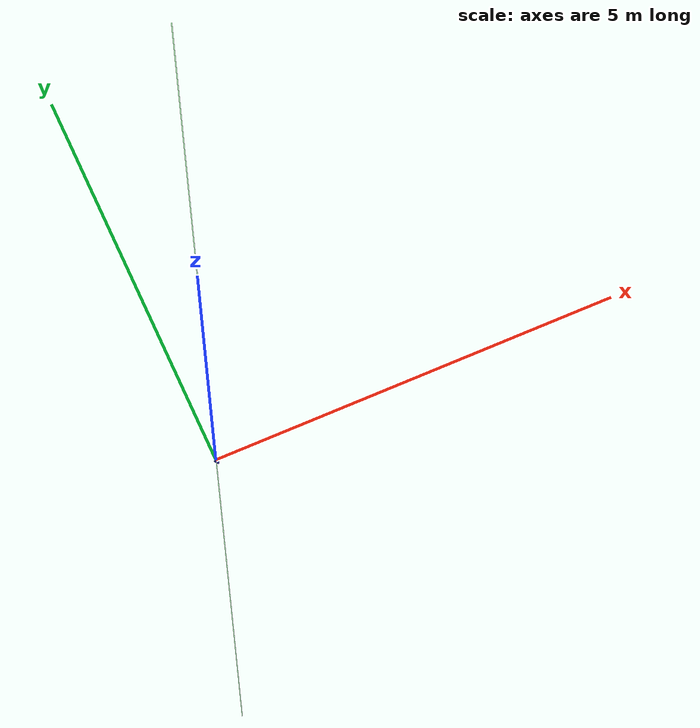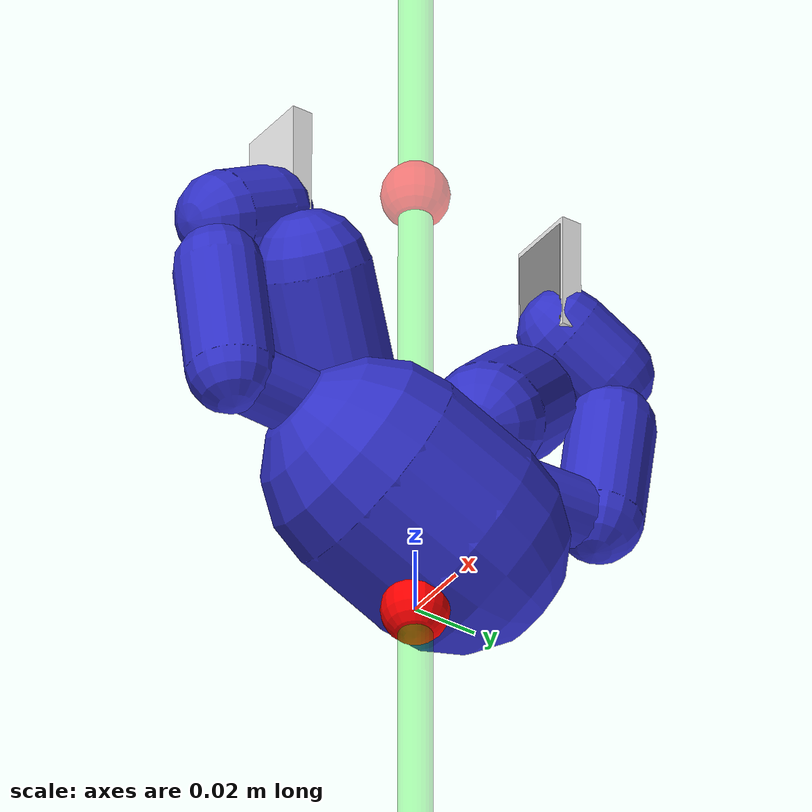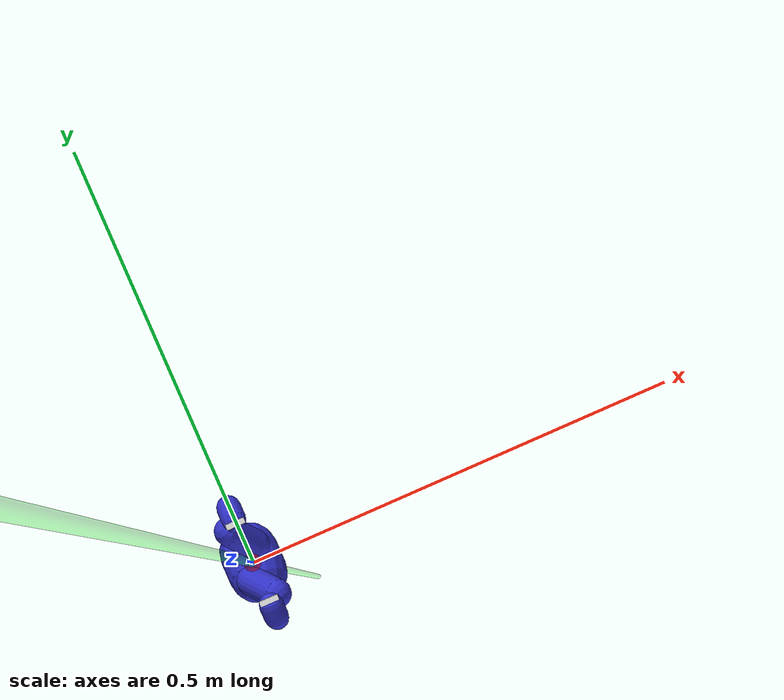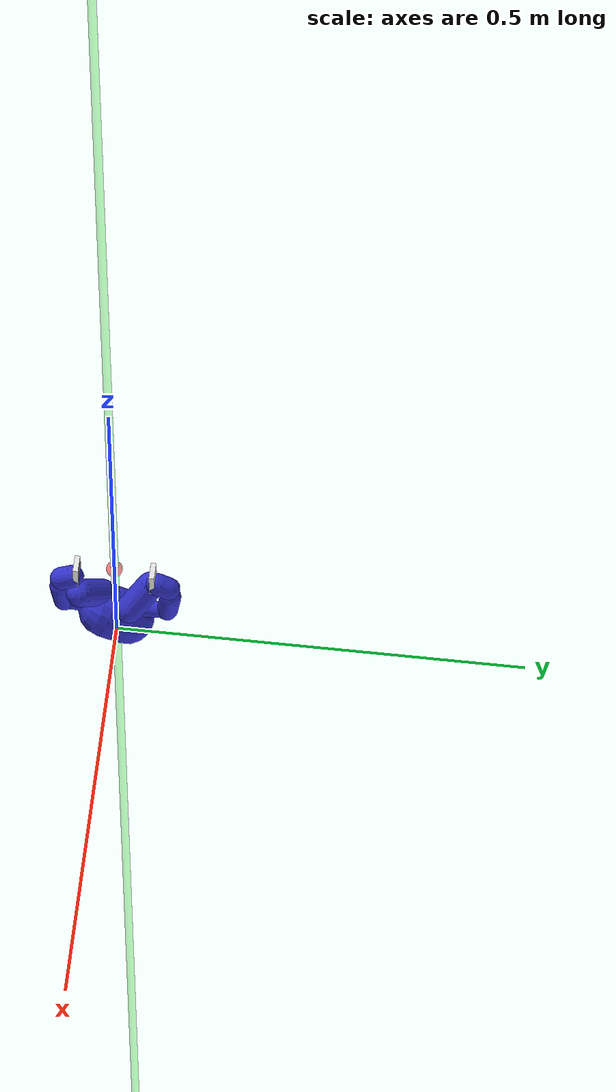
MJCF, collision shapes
<mujoco model="robotiq_gripper_85_model">
  <asset>
    <mesh name="robotiq_arg2f_base_link" file="meshes/robotiq_85_gripper/robotiq_arg2f_base_link.stl"/>
    <mesh name="robotiq_arg2f_85_outer_knuckle" file="meshes/robotiq_85_gripper/robotiq_arg2f_85_outer_knuckle.stl" scale="0.001 0.001 0.001"/>
    <mesh name="robotiq_arg2f_85_outer_finger" file="meshes/robotiq_85_gripper/robotiq_arg2f_85_outer_finger.stl" scale="0.001 0.001 0.001"/>
    <mesh name="robotiq_arg2f_85_inner_finger" file="meshes/robotiq_85_gripper/robotiq_arg2f_85_inner_finger.stl" scale="0.001 0.001 0.001"/>
    <mesh name="robotiq_arg2f_85_inner_knuckle" file="meshes/robotiq_85_gripper/robotiq_arg2f_85_inner_knuckle.stl" scale="0.001 0.001 0.001"/>
    <mesh name="robotiq_arg2f_base_link" file="meshes/robotiq_85_gripper/robotiq_arg2f_base_link_vis.stl"/>
    <mesh name="robotiq_arg2f_85_outer_knuckle_vis" file="meshes/robotiq_85_gripper/robotiq_arg2f_85_outer_knuckle_vis.stl" scale="0.001 0.001 0.001"/>
    <mesh name="robotiq_arg2f_85_outer_finger_vis" file="meshes/robotiq_85_gripper/robotiq_arg2f_85_outer_finger_vis.stl" scale="0.001 0.001 0.001"/>
    <mesh name="robotiq_arg2f_85_inner_finger_vis" file="meshes/robotiq_85_gripper/robotiq_arg2f_85_inner_finger_vis.stl" scale="0.001 0.001 0.001"/>
    <mesh name="robotiq_arg2f_85_inner_knuckle_vis" file="meshes/robotiq_85_gripper/robotiq_arg2f_85_inner_knuckle_vis.stl" scale="0.001 0.001 0.001"/>
  </asset>
  <tendon>
    <fixed name="finger2_12_cpl" range="-1 1" stiffness="0.4" springlength="0.001" limited="true">
      <joint joint="finger_joint" coef="1"/>
      <joint joint="left_inner_finger_joint" coef="-3"/>
      <joint joint="left_inner_knuckle_joint" coef="1"/>
    </fixed>
    <fixed name="finger1_12_cpl" range="-1 1" stiffness="0.4" springlength="0.001" limited="true">
      <joint joint="right_outer_knuckle_joint" coef="1"/>
      <joint joint="right_inner_finger_joint" coef="-3"/>
      <joint joint="right_inner_knuckle_joint" coef="1"/>
    </fixed>
  </tendon>
  <actuator>
    <position name="finger_1" ctrllimited="true" kp="20" joint="finger_joint" ctrlrange="0 0.8"/>
    <position name="finger_2" ctrllimited="true" kp="20" joint="right_outer_knuckle_joint" ctrlrange="0 0.8"/>
  </actuator>
  <worldbody>
    <body name="robotiq_85_adapter_link" pos="0.0 0 0">
      <site name="ft_frame" pos="0 0 0" size="0.01 0.01 0.01" rgba="1 0 0 1" type="sphere" group="1"/>
      <body name="eef" pos="0 0 0.145" quat="0.707105 0 0 -0.707105">
        <site name="grip_site" pos="0 0 0" size="0.01 0.01 0.01" rgba="1 0 0 0.5" type="sphere" group="1"/>
        <site name="ee_x" pos="0.1 0 0" size="0.005 .1" quat="0.707105  0 0.707108 0 " rgba="1 0 0 0" type="cylinder" group="1"/>
        <site name="ee_y" pos="0 0.1 0" size="0.005 .1" quat="0.707105 0.707108 0 0" rgba="0 1 0 0" type="cylinder" group="1"/>
        <site name="ee_z" pos="0 0 0.1" size="0.005 .1" quat="1 0 0 0" rgba="0 0 1 0" type="cylinder" group="1"/>
        <site name="grip_site_cylinder" pos="0 0 0" size="0.005 10" rgba="0 1 0 0.3" type="cylinder" group="1"/>
      </body>
      <inertial pos="0 0 0" mass="0.01" diaginertia="0.001 0.001 0.001"/>
      <geom type="capsule" contype="0" conaffinity="0" group="1" rgba="0.2 0.2 0.8 0.5" name="hand_visual" pos="-0.000000 0.000085 0.036116" quat="0.544277 -0.838904 -0.001321 0.000000" size="0.032904 0.014718"/>
      <geom type="capsule" group="0" rgba="0.2 0.2 0.8 0.5" name="hand_collision" pos="-0.000000 0.000085 0.036116" quat="0.544277 -0.838904 -0.001321 0.000000" size="0.032904 0.014718"/>
      <body name="left_outer_knuckle" pos="0 -0.0306011 0.054904" quat="0 0 0 1">
        <inertial pos="0.000163875 0.0554825 -0.0100755" quat="0.920541 0.390623 -0.00362953 0.00231744" mass="0.0311462" diaginertia="5.11372e-05 4.89464e-05 4.95906e-06"/>
        <joint name="finger_joint" pos="0 0 0" axis="1 0 0" limited="true" range="0 0.8"/>
        <geom type="mesh" contype="0" conaffinity="0" group="1" rgba="0.792157 0.819608 0.933333 1" name="left_outer_knuckle_visual" mesh="robotiq_arg2f_85_outer_knuckle_vis"/>
        <geom type="capsule" group="0" rgba="0.2 0.2 0.8 0.5" name="left_outer_knuckle_collision" solref="0.01 0.25" pos="-0.000000 0.015697 0.001351" quat="0.720976 -0.692960 0.000000 0.000000" size="0.010248 0.012983"/>
        <geom pos="0 0.0315 -0.0041" type="mesh" contype="0" conaffinity="0" group="1" rgba="0.1 0.1 0.1 1" name="left_outer_finger_visual" mesh="robotiq_arg2f_85_outer_finger_vis"/>
        <geom pos="-0.000000 0.034558 0.019462" type="capsule" group="0" rgba="0.2 0.2 0.8 0.5" name="left_outer_finger_collision" solref="0.01 0.25" quat="0.064844 0.997895 0.000000 0.000000" size="0.012940 0.016820"/>
        <body name="left_inner_finger" pos="0 0.0376 0.043">
          <inertial pos="0.000199506 0.0032692 0.00175282" quat="0.933621 0.35825 -0.00273441 0.00104851" mass="0.0156391" diaginertia="1.57977e-05 1.51089e-05 1.4647e-06"/>
          <joint name="left_inner_finger_joint" pos="0 0 0" axis="1 0 0" limited="true" range="-0.8757 0.8757"/>
          <geom type="mesh" contype="0" conaffinity="0" group="1" rgba="0.1 0.1 0.1 1" name="left_inner_finger_visual" mesh="robotiq_arg2f_85_inner_finger_vis"/>
          <geom type="capsule" group="0" rgba="0.2 0.2 0.8 0.5" name="left_inner_finger_collision" solref="0.01 0.25" pos="-0.000000 -0.009713 0.015484" quat="0.859202 0.511636 0.000000 0.000000" size="0.013738 0.008174"/>
          <geom size="0.011 0.003175 0.01875" pos="0 -0.0220203 0.03242" type="box" contype="0" conaffinity="0" group="1" rgba="0.9 0.9 0.9 1" name="left_fingertip_visual"/>
          <geom size="0.011 0.003175 0.01875" pos="0 -0.0220203 0.03242" type="box" group="0" rgba="0.9 0.9 0.9 1" name="left_fingertip_collision" solref="0.01 0.25"/>
          <geom size="0.010 0.001 0.01675" pos="0 -0.0245203 0.03242" type="box" group="0" name="left_fingerpad_collision"/>
        </body>
      </body>
      <body name="left_inner_knuckle" pos="0 -0.0127 0.06142" quat="0 0 0 1">
        <inertial pos="0.000123012 0.0507851 0.00103969" quat="0.497203 0.502496 -0.507943 0.492221" mass="0.0271177" diaginertia="2.83809e-05 2.61936e-05 2.81319e-06"/>
        <joint name="left_inner_knuckle_joint" pos="0 0 0" axis="1 0 0" limited="true" range="0 0.8757"/>
        <geom type="mesh" contype="0" conaffinity="0" group="1" rgba="0.1 0.1 0.1 1" name="left_inner_knuckle_visual" mesh="robotiq_arg2f_85_inner_knuckle_vis"/>
        <geom type="capsule" group="0" rgba="0.2 0.2 0.8 0.5" name="left_inner_knuckle_collision" pos="-0.000186 0.017191 0.020127" quat="0.913732 -0.313791 -0.258124 0.000000" size="0.016951 0.020965"/>
      </body>
      <body name="right_outer_knuckle" pos="0 0.0306011 0.054904">
        <inertial pos="0.000163875 0.0554825 -0.0100755" quat="0.920541 0.390623 -0.00362953 0.00231744" mass="0.0311462" diaginertia="5.11372e-05 4.89464e-05 4.95906e-06"/>
        <joint name="right_outer_knuckle_joint" pos="0 0 0" axis="1 0 0" limited="true" range="0 0.8"/>
        <geom type="mesh" contype="0" conaffinity="0" group="1" rgba="0.792157 0.819608 0.933333 1" name="right_outer_knuckle_visual" mesh="robotiq_arg2f_85_outer_knuckle_vis"/>
        <geom type="capsule" group="0" rgba="0.2 0.2 0.8 0.5" name="right_outer_knuckle_collision" solref="0.01 0.25" pos="-0.000000 0.015697 0.001351" quat="0.720976 -0.692960 0.000000 0.000000" size="0.010248 0.012983"/>
        <geom pos="0 0.0315 -0.0041" type="mesh" contype="0" conaffinity="0" group="1" rgba="0.1 0.1 0.1 1" name="right_outer_finger_visual" mesh="robotiq_arg2f_85_outer_finger_vis"/>
        <geom pos="-0.000000 0.034558 0.019462" type="capsule" group="0" rgba="0.2 0.2 0.8 0.5" name="right_outer_finger_collision" solref="0.01 0.25" quat="0.064844 0.997895 0.000000 0.000000" size="0.012940 0.016820"/>
        <body name="right_inner_finger" pos="0 0.0376 0.043">
          <inertial pos="0.000199506 0.0032692 0.00175282" quat="0.933621 0.35825 -0.00273441 0.00104851" mass="0.0156391" diaginertia="1.57977e-05 1.51089e-05 1.4647e-06"/>
          <joint name="right_inner_finger_joint" pos="0 0 0" axis="1 0 0" limited="true" range="-0.8757 0.8757"/>
          <geom type="mesh" contype="0" conaffinity="0" group="1" rgba="0.1 0.1 0.1 1" name="right_inner_finger_visual" mesh="robotiq_arg2f_85_inner_finger_vis"/>
          <geom type="capsule" group="0" rgba="0.2 0.2 0.8 0.5" name="right_inner_finger_collision" solref="0.01 0.25" pos="-0.000000 -0.009713 0.015484" quat="0.859202 0.511636 0.000000 0.000000" size="0.013738 0.008174"/>
          <geom size="0.011 0.003175 0.01875" pos="0 -0.0220203 0.03242" type="box" contype="0" conaffinity="0" group="1" rgba="0.9 0.9 0.9 1" name="right_fingertip_visual"/>
          <geom size="0.011 0.003175 0.01875" pos="0 -0.0220203 0.03242" type="box" group="0" rgba="0.9 0.9 0.9 1" name="right_fingertip_collision" solref="0.01 0.25"/>
          <geom size="0.010 0.001 0.01675" pos="0 -0.0245203 0.03242" type="box" group="0" name="right_fingerpad_collision"/>
        </body>
      </body>
      <body name="right_inner_knuckle" pos="0 0.0127 0.06142">
        <inertial pos="0.000123012 0.0507851 0.00103969" quat="0.497203 0.502496 -0.507943 0.492221" mass="0.0271177" diaginertia="2.83809e-05 2.61936e-05 2.81319e-06"/>
        <joint name="right_inner_knuckle_joint" pos="0 0 0" axis="1 0 0" limited="true" range="0 0.8757"/>
        <geom type="mesh" contype="0" conaffinity="0" group="1" rgba="0.1 0.1 0.1 1" name="right_inner_knuckle_visual" mesh="robotiq_arg2f_85_inner_knuckle_vis"/>
        <geom type="capsule" group="0" rgba="0.2 0.2 0.8 0.5" name="right_inner_knuckle_collision" pos="-0.000186 0.017191 0.020127" quat="0.913732 -0.313791 -0.258124 0.000000" size="0.016951 0.020965"/>
      </body>
    </body>
  </worldbody>
  <sensor>
    <force name="force_ee" site="ft_frame"/>
    <torque name="torque_ee" site="ft_frame"/>
  </sensor>
</mujoco>
